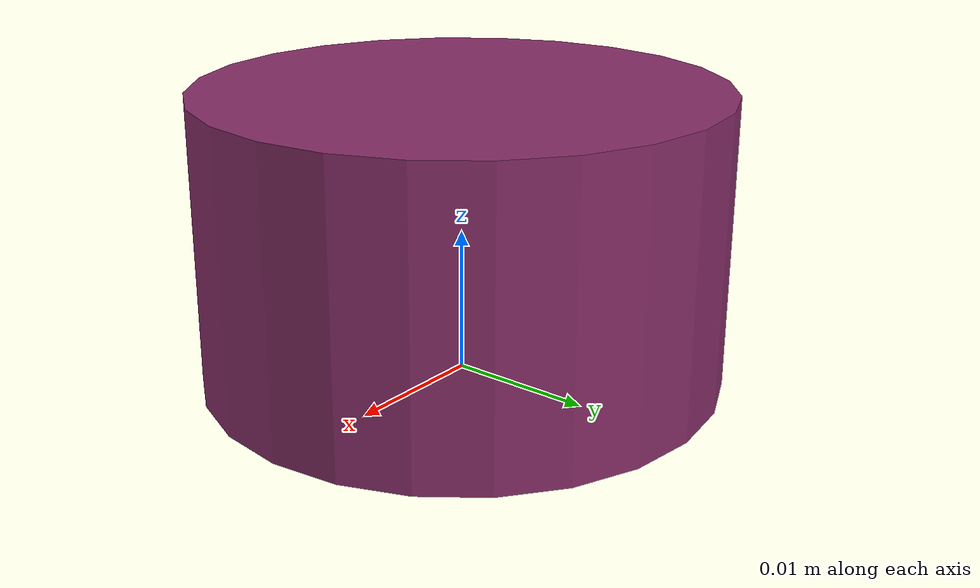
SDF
<sdf version="1.7">
  <model name="disc_18">
    <link name="base_link">
      <inertial>
        <mass>0.05</mass>
        <inertia>
          <ixx>7.91e-06</ixx>
          <ixy>0</ixy>
          <ixz>0</ixz>
          <iyy>7.91e-06</iyy>
          <iyz>0</iyz>
          <izz>1.56e-05</izz>
        </inertia>
        <pose>0 0 0.0025 0 0 0</pose>
      </inertial>
      <pose>0 0 0 0 0 0</pose>
      <visual name="visual">
        <pose>0 0 0.01 0 0 0</pose>
        <geometry>
            <cylinder>
              <radius>0.018000000000000002</radius>
              <length>0.02</length>
            </cylinder>
        </geometry>
        <material>
          <diffuse>0.5346876174149742 0.1817965039666125 0.4119489157548485 1</diffuse>
        </material>
      </visual>
      <collision name="collision">
        <pose>0 0 0.01 0 0 0</pose>
        <geometry>
            <cylinder>
              <radius>0.018000000000000002</radius>
              <length>0.02</length>
            </cylinder>
        </geometry>
      </collision>
      <collision name="ball1">
        <pose>0.012727922061357855 0.012727922061357855 0 0 0 0</pose>
        <geometry>
          <sphere>
            <radius>1e-07</radius>
          </sphere>
        </geometry>
      </collision>
      <collision name="ball2">
        <pose>-0.012727922061357855 0.012727922061357855 0 0 0 0</pose>
        <geometry>
          <sphere>
            <radius>1e-07</radius>
          </sphere>
        </geometry>
      </collision>
      <collision name="ball3">
        <pose>0.012727922061357855 -0.012727922061357855 0 0 0 0</pose>
        <geometry>
          <sphere>
            <radius>1e-07</radius>
          </sphere>
        </geometry>
      </collision>
      <collision name="ball4">
        <pose>-0.012727922061357855 -0.012727922061357855 0 0 0 0</pose>
        <geometry>
          <sphere>
            <radius>1e-07</radius>
          </sphere>
        </geometry>
      </collision>
    </link>
  </model>
</sdf>
